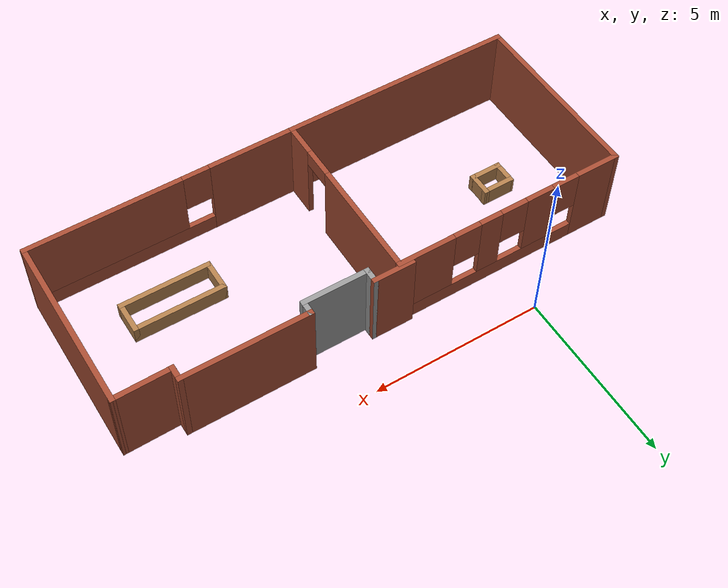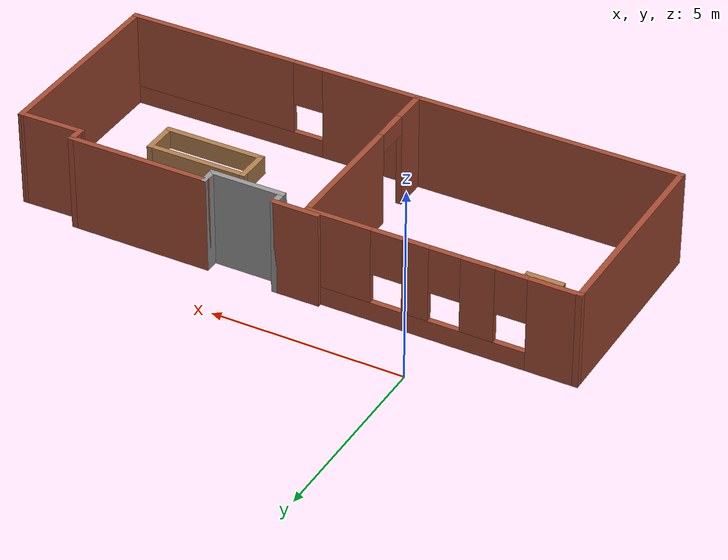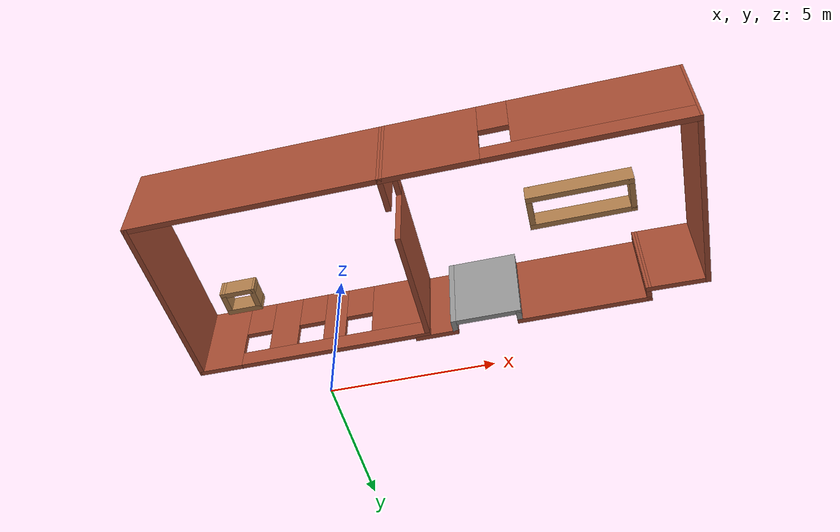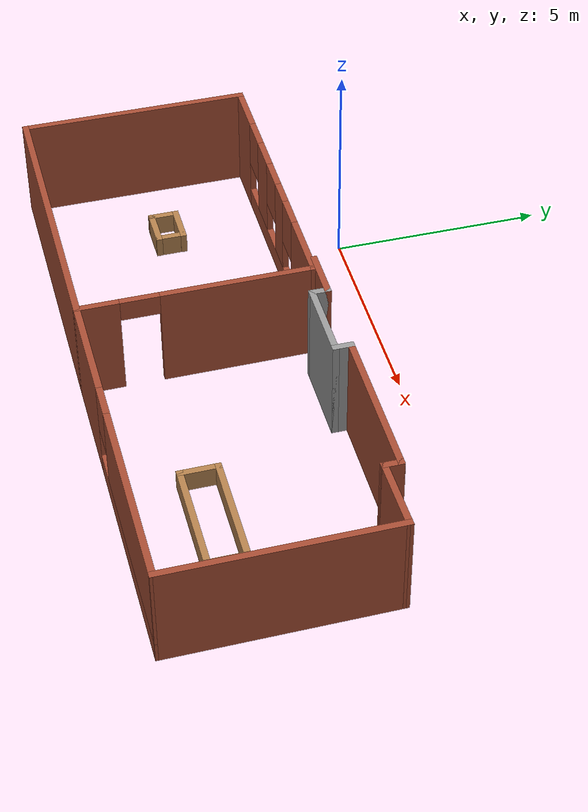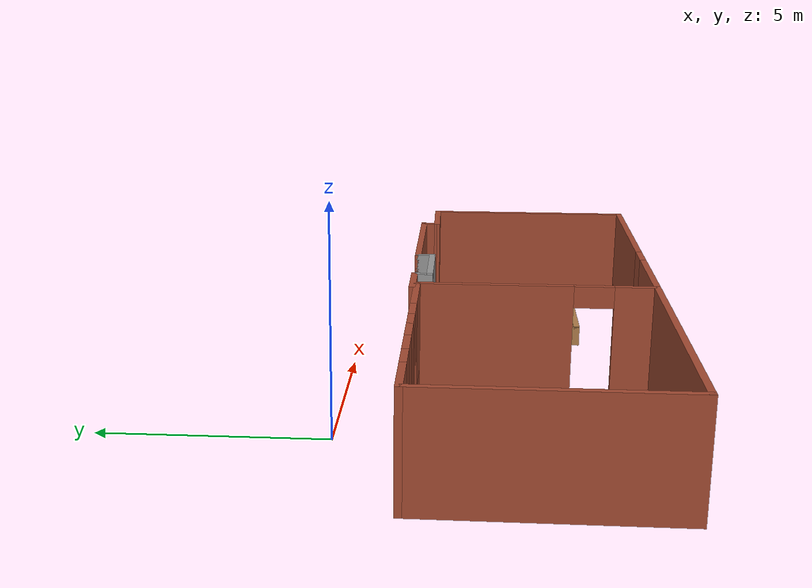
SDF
<?xml version='1.0'?>
<sdf version='1.5'>
  <model name='ktM_2nd_floor'>
    <pose>3.86055 -4.20512 0 0 -0 0</pose>
    <link name='Wall_10'>
      <pose>-0.500552 -0.049876 0 0 -0 1.5708</pose>
      <visual name='Wall_10_Visual_0'>
        <pose>-2.24128 0 1.25 0 -0 0</pose>
        <geometry>
          <box>
            <size>1.01743 0.15 2.5</size>
          </box>
        </geometry>
        <material>
          <script>
            <uri>file://media/materials/scripts/gazebo.material</uri>
            <name>Gazebo/Bricks</name>
          </script>
          <ambient>1 1 1 1</ambient>
        </material>
      </visual>
      <collision name='Wall_10_Collision_0'>
        <geometry>
          <box>
            <size>1.01743 0.15 2.5</size>
          </box>
        </geometry>
        <pose>-2.24128 0 1.25 0 -0 0</pose>
      </collision>
      <visual name='Wall_10_Visual_1'>
        <pose>0.958717 0 1.25 0 -0 0</pose>
        <geometry>
          <box>
            <size>3.58257 0.15 2.5</size>
          </box>
        </geometry>
        <material>
          <script>
            <uri>file://media/materials/scripts/gazebo.material</uri>
            <name>Gazebo/Bricks</name>
          </script>
          <ambient>1 1 1 1</ambient>
        </material>
      </visual>
      <collision name='Wall_10_Collision_1'>
        <geometry>
          <box>
            <size>3.58257 0.15 2.5</size>
          </box>
        </geometry>
        <pose>0.958717 0 1.25 0 -0 0</pose>
      </collision>
      <visual name='Wall_10_Visual_2'>
        <pose>-1.28257 0 2.25 0 -0 0</pose>
        <geometry>
          <box>
            <size>0.9 0.15 0.5</size>
          </box>
        </geometry>
        <material>
          <script>
            <uri>file://media/materials/scripts/gazebo.material</uri>
            <name>Gazebo/Bricks</name>
          </script>
          <ambient>1 1 1 1</ambient>
        </material>
      </visual>
      <collision name='Wall_10_Collision_2'>
        <geometry>
          <box>
            <size>0.9 0.15 0.5</size>
          </box>
        </geometry>
        <pose>-1.28257 0 2.25 0 -0 0</pose>
      </collision>
    </link>
    <link name='Wall_13'>
      <pose>3.42445 -2.71188 0 0 -0 0.003312</pose>
      <visual name='Wall_13_Visual_0'>
        <pose>-2.6834 0 1.25 0 -0 0</pose>
        <geometry>
          <box>
            <size>2.6332 0.15 2.5</size>
          </box>
        </geometry>
        <material>
          <script>
            <uri>file://media/materials/scripts/gazebo.material</uri>
            <name>Gazebo/Bricks</name>
          </script>
          <ambient>1 1 1 1</ambient>
        </material>
      </visual>
      <collision name='Wall_13_Collision_0'>
        <geometry>
          <box>
            <size>2.6332 0.15 2.5</size>
          </box>
        </geometry>
        <pose>-2.6834 0 1.25 0 -0 0</pose>
      </collision>
      <visual name='Wall_13_Visual_1'>
        <pose>1.3166 0 0.25 0 -0 0</pose>
        <geometry>
          <box>
            <size>5.3668 0.15 0.5</size>
          </box>
        </geometry>
        <material>
          <script>
            <uri>file://media/materials/scripts/gazebo.material</uri>
            <name>Gazebo/Bricks</name>
          </script>
          <ambient>1 1 1 1</ambient>
        </material>
      </visual>
      <collision name='Wall_13_Collision_1'>
        <geometry>
          <box>
            <size>5.3668 0.15 0.5</size>
          </box>
        </geometry>
        <pose>1.3166 0 0.25 0 -0 0</pose>
      </collision>
      <visual name='Wall_13_Visual_2'>
        <pose>1.7166 0 1.5 0 -0 0</pose>
        <geometry>
          <box>
            <size>4.5668 0.15 2</size>
          </box>
        </geometry>
        <material>
          <script>
            <uri>file://media/materials/scripts/gazebo.material</uri>
            <name>Gazebo/Bricks</name>
          </script>
          <ambient>1 1 1 1</ambient>
        </material>
      </visual>
      <collision name='Wall_13_Collision_2'>
        <geometry>
          <box>
            <size>4.5668 0.15 2</size>
          </box>
        </geometry>
        <pose>1.7166 0 1.5 0 -0 0</pose>
      </collision>
      <visual name='Wall_13_Visual_3'>
        <pose>-0.966801 0 1.9 0 -0 0</pose>
        <geometry>
          <box>
            <size>0.8 0.15 1.2</size>
          </box>
        </geometry>
        <material>
          <script>
            <uri>file://media/materials/scripts/gazebo.material</uri>
            <name>Gazebo/Bricks</name>
          </script>
          <ambient>1 1 1 1</ambient>
        </material>
      </visual>
      <collision name='Wall_13_Collision_3'>
        <geometry>
          <box>
            <size>0.8 0.15 1.2</size>
          </box>
        </geometry>
        <pose>-0.966801 0 1.9 0 -0 0</pose>
      </collision>
    </link>
    <link name='Wall_14'>
      <collision name='Wall_14_Collision'>
        <geometry>
          <box>
            <size>5.25 0.15 2.5</size>
          </box>
        </geometry>
        <pose>0 0 1.25 0 -0 0</pose>
      </collision>
      <visual name='Wall_14_Visual'>
        <pose>0 0 1.25 0 -0 0</pose>
        <geometry>
          <box>
            <size>5.25 0.15 2.5</size>
          </box>
        </geometry>
        <material>
          <script>
            <uri>file://media/materials/scripts/gazebo.material</uri>
            <name>Gazebo/Bricks</name>
          </script>
          <ambient>1 1 1 1</ambient>
        </material>
      </visual>
      <pose>7.34945 -0.148876 0 0 -0 1.5708</pose>
    </link>
    <link name='Wall_15'>
      <collision name='Wall_15_Collision'>
        <geometry>
          <box>
            <size>1.75 0.15 2.5</size>
          </box>
        </geometry>
        <pose>0 0 1.25 0 -0 0</pose>
      </collision>
      <visual name='Wall_15_Visual'>
        <pose>0 0 1.25 0 -0 0</pose>
        <geometry>
          <box>
            <size>1.75 0.15 2.5</size>
          </box>
        </geometry>
        <material>
          <script>
            <uri>file://media/materials/scripts/gazebo.material</uri>
            <name>Gazebo/Bricks</name>
          </script>
          <ambient>1 1 1 1</ambient>
        </material>
      </visual>
      <pose>6.54945 2.38812 0 0 0 -3.12534</pose>
    </link>
    <link name='Wall_16'>
      <collision name='Wall_16_Collision'>
        <geometry>
          <box>
            <size>0.5 0.15 2.5</size>
          </box>
        </geometry>
        <pose>0 0 1.25 0 -0 0</pose>
      </collision>
      <visual name='Wall_16_Visual'>
        <pose>0 0 1.25 0 -0 0</pose>
        <geometry>
          <box>
            <size>0.5 0.15 2.5</size>
          </box>
        </geometry>
        <material>
          <script>
            <uri>file://media/materials/scripts/gazebo.material</uri>
            <name>Gazebo/Bricks</name>
          </script>
          <ambient>1 1 1 1</ambient>
        </material>
      </visual>
      <pose>5.74945 2.55012 0 0 -0 1.5708</pose>
    </link>
    <link name='Wall_17'>
      <collision name='Wall_17_Collision'>
        <geometry>
          <box>
            <size>3.75 0.15 2.5</size>
          </box>
        </geometry>
        <pose>0 0 1.25 0 -0 0</pose>
      </collision>
      <visual name='Wall_17_Visual'>
        <pose>0 0 1.25 0 -0 0</pose>
        <geometry>
          <box>
            <size>3.75 0.15 2.5</size>
          </box>
        </geometry>
        <material>
          <script>
            <uri>file://media/materials/scripts/gazebo.material</uri>
            <name>Gazebo/Bricks</name>
          </script>
          <ambient>1 1 1 1</ambient>
        </material>
      </visual>
      <pose>3.94945 2.72512 0 0 -0 3.14159</pose>
    </link>
    <link name='Wall_18'>
      <collision name='Wall_18_Collision'>
        <geometry>
          <box>
            <size>0.5 0.15 2.5</size>
          </box>
        </geometry>
        <pose>0 0 1.25 0 -0 0</pose>
      </collision>
      <visual name='Wall_18_Visual'>
        <pose>0 0 1.25 0 -0 0</pose>
        <geometry>
          <box>
            <size>0.5 0.15 2.5</size>
          </box>
        </geometry>
        <material>
          <script>
            <uri>file://media/materials/scripts/gazebo.material</uri>
            <name>Gazebo/Grey</name>
          </script>
          <ambient>1 1 1 1</ambient>
        </material>
      </visual>
      <pose>2.14945 2.55012 0 0 0 -1.5708</pose>
    </link>
    <link name='Wall_19'>
      <collision name='Wall_19_Collision'>
        <geometry>
          <box>
            <size>2 0.15 2.5</size>
          </box>
        </geometry>
        <pose>0 0 1.25 0 -0 0</pose>
      </collision>
      <visual name='Wall_19_Visual'>
        <pose>0 0 1.25 0 -0 0</pose>
        <geometry>
          <box>
            <size>2 0.15 2.5</size>
          </box>
        </geometry>
        <material>
          <script>
            <uri>file://media/materials/scripts/gazebo.material</uri>
            <name>Gazebo/Grey</name>
          </script>
          <ambient>1 1 1 1</ambient>
        </material>
      </visual>
      <pose>1.22445 2.37512 0 0 -0 3.14159</pose>
    </link>
    <link name='Wall_2'>
      <pose>-3.92555 2.62512 0 0 -0 0</pose>
      <visual name='Wall_2_Visual_0'>
        <pose>-2.83498 0 1.25 0 -0 0</pose>
        <geometry>
          <box>
            <size>1.33004 0.15 2.5</size>
          </box>
        </geometry>
        <material>
          <script>
            <uri>file://media/materials/scripts/gazebo.material</uri>
            <name>Gazebo/Bricks</name>
          </script>
          <ambient>1 1 1 1</ambient>
        </material>
      </visual>
      <collision name='Wall_2_Collision_0'>
        <geometry>
          <box>
            <size>1.33004 0.15 2.5</size>
          </box>
        </geometry>
        <pose>-2.83498 0 1.25 0 -0 0</pose>
      </collision>
      <visual name='Wall_2_Visual_1'>
        <pose>0.66502 0 0.25 0 -0 0</pose>
        <geometry>
          <box>
            <size>5.66996 0.15 0.5</size>
          </box>
        </geometry>
        <material>
          <script>
            <uri>file://media/materials/scripts/gazebo.material</uri>
            <name>Gazebo/Bricks</name>
          </script>
          <ambient>1 1 1 1</ambient>
        </material>
      </visual>
      <collision name='Wall_2_Collision_1'>
        <geometry>
          <box>
            <size>5.66996 0.15 0.5</size>
          </box>
        </geometry>
        <pose>0.66502 0 0.25 0 -0 0</pose>
      </collision>
      <visual name='Wall_2_Visual_2'>
        <pose>-0.941489 0 1.5 0 -0 0</pose>
        <geometry>
          <box>
            <size>0.856941 0.15 2</size>
          </box>
        </geometry>
        <material>
          <script>
            <uri>file://media/materials/scripts/gazebo.material</uri>
            <name>Gazebo/Bricks</name>
          </script>
          <ambient>1 1 1 1</ambient>
        </material>
      </visual>
      <collision name='Wall_2_Collision_2'>
        <geometry>
          <box>
            <size>0.856941 0.15 2</size>
          </box>
        </geometry>
        <pose>-0.941489 0 1.5 0 -0 0</pose>
      </collision>
      <visual name='Wall_2_Visual_3'>
        <pose>0.6234 0 1.5 0 -0 0</pose>
        <geometry>
          <box>
            <size>0.672836 0.15 2</size>
          </box>
        </geometry>
        <material>
          <script>
            <uri>file://media/materials/scripts/gazebo.material</uri>
            <name>Gazebo/Bricks</name>
          </script>
          <ambient>1 1 1 1</ambient>
        </material>
      </visual>
      <collision name='Wall_2_Collision_3'>
        <geometry>
          <box>
            <size>0.672836 0.15 2</size>
          </box>
        </geometry>
        <pose>0.6234 0 1.5 0 -0 0</pose>
      </collision>
      <visual name='Wall_2_Visual_4'>
        <pose>2.62991 0 1.5 0 -0 0</pose>
        <geometry>
          <box>
            <size>1.74018 0.15 2</size>
          </box>
        </geometry>
        <material>
          <script>
            <uri>file://media/materials/scripts/gazebo.material</uri>
            <name>Gazebo/Bricks</name>
          </script>
          <ambient>1 1 1 1</ambient>
        </material>
      </visual>
      <collision name='Wall_2_Collision_4'>
        <geometry>
          <box>
            <size>1.74018 0.15 2</size>
          </box>
        </geometry>
        <pose>2.62991 0 1.5 0 -0 0</pose>
      </collision>
      <visual name='Wall_2_Visual_5'>
        <pose>-1.76996 0 1.9 0 -0 0</pose>
        <geometry>
          <box>
            <size>0.8 0.15 1.2</size>
          </box>
        </geometry>
        <material>
          <script>
            <uri>file://media/materials/scripts/gazebo.material</uri>
            <name>Gazebo/Bricks</name>
          </script>
          <ambient>1 1 1 1</ambient>
        </material>
      </visual>
      <collision name='Wall_2_Collision_5'>
        <geometry>
          <box>
            <size>0.8 0.15 1.2</size>
          </box>
        </geometry>
        <pose>-1.76996 0 1.9 0 -0 0</pose>
      </collision>
      <visual name='Wall_2_Visual_6'>
        <pose>-0.113019 0 1.9 0 -0 0</pose>
        <geometry>
          <box>
            <size>0.8 0.15 1.2</size>
          </box>
        </geometry>
        <material>
          <script>
            <uri>file://media/materials/scripts/gazebo.material</uri>
            <name>Gazebo/Bricks</name>
          </script>
          <ambient>1 1 1 1</ambient>
        </material>
      </visual>
      <collision name='Wall_2_Collision_6'>
        <geometry>
          <box>
            <size>0.8 0.15 1.2</size>
          </box>
        </geometry>
        <pose>-0.113019 0 1.9 0 -0 0</pose>
      </collision>
      <visual name='Wall_2_Visual_7'>
        <pose>1.35982 0 1.9 0 -0 0</pose>
        <geometry>
          <box>
            <size>0.8 0.15 1.2</size>
          </box>
        </geometry>
        <material>
          <script>
            <uri>file://media/materials/scripts/gazebo.material</uri>
            <name>Gazebo/Bricks</name>
          </script>
          <ambient>1 1 1 1</ambient>
        </material>
      </visual>
      <collision name='Wall_2_Collision_7'>
        <geometry>
          <box>
            <size>0.8 0.15 1.2</size>
          </box>
        </geometry>
        <pose>1.35982 0 1.9 0 -0 0</pose>
      </collision>
    </link>
    <link name='Wall_23'>
      <collision name='Wall_23_Collision'>
        <geometry>
          <box>
            <size>0.5 0.15 2.5</size>
          </box>
        </geometry>
        <pose>0 0 1.25 0 -0 0</pose>
      </collision>
      <visual name='Wall_23_Visual'>
        <pose>0 0 1.25 0 -0 0</pose>
        <geometry>
          <box>
            <size>0.5 0.15 2.5</size>
          </box>
        </geometry>
        <material>
          <script>
            <uri>file://media/materials/scripts/gazebo.material</uri>
            <name>Gazebo/Grey</name>
          </script>
          <ambient>1 1 1 1</ambient>
        </material>
      </visual>
      <pose>0.299448 2.55012 0 0 -0 1.5708</pose>
    </link>
    <link name='Wall_24'>
      <collision name='Wall_24_Collision'>
        <geometry>
          <box>
            <size>1.25 0.15 2.5</size>
          </box>
        </geometry>
        <pose>0 0 1.25 0 -0 0</pose>
      </collision>
      <visual name='Wall_24_Visual'>
        <pose>0 0 1.25 0 -0 0</pose>
        <geometry>
          <box>
            <size>1.25 0.15 2.5</size>
          </box>
        </geometry>
        <material>
          <script>
            <uri>file://media/materials/scripts/gazebo.material</uri>
            <name>Gazebo/Bricks</name>
          </script>
          <ambient>1 1 1 1</ambient>
        </material>
      </visual>
      <pose>-0.250552 2.72512 0 0 -0 3.14159</pose>
    </link>
    <link name='Wall_31'>
      <collision name='Wall_31_Collision'>
        <geometry>
          <box>
            <size>0.993 0.15 0.5</size>
          </box>
        </geometry>
        <pose>0 0 0.25 0 -0 0</pose>
      </collision>
      <visual name='Wall_31_Visual'>
        <pose>0 0 0.25 0 -0 0</pose>
        <geometry>
          <box>
            <size>0.993 0.15 0.5</size>
          </box>
        </geometry>
        <material>
          <script>
            <uri>file://media/materials/scripts/gazebo.material</uri>
            <name>Gazebo/Wood</name>
          </script>
          <ambient>1 1 1 1</ambient>
        </material>
      </visual>
      <pose>-5.23805 0.532355 0 0 -0 0.000548</pose>
    </link>
    <link name='Wall_32'>
      <collision name='Wall_32_Collision'>
        <geometry>
          <box>
            <size>0.75 0.15 0.5</size>
          </box>
        </geometry>
        <pose>0 0 0.25 0 -0 0</pose>
      </collision>
      <visual name='Wall_32_Visual'>
        <pose>0 0 0.25 0 -0 0</pose>
        <geometry>
          <box>
            <size>0.75 0.15 0.5</size>
          </box>
        </geometry>
        <material>
          <script>
            <uri>file://media/materials/scripts/gazebo.material</uri>
            <name>Gazebo/Wood</name>
          </script>
          <ambient>1 1 1 1</ambient>
        </material>
      </visual>
      <pose>-4.82309 0.232586 0 0 0 -1.5708</pose>
    </link>
    <link name='Wall_33'>
      <collision name='Wall_33_Collision'>
        <geometry>
          <box>
            <size>0.993 0.15 0.5</size>
          </box>
        </geometry>
        <pose>0 0 0.25 0 -0 0</pose>
      </collision>
      <visual name='Wall_33_Visual'>
        <pose>0 0 0.25 0 -0 0</pose>
        <geometry>
          <box>
            <size>0.993 0.15 0.5</size>
          </box>
        </geometry>
        <material>
          <script>
            <uri>file://media/materials/scripts/gazebo.material</uri>
            <name>Gazebo/Wood</name>
          </script>
          <ambient>1 1 1 1</ambient>
        </material>
      </visual>
      <pose>-5.23805 -0.067645 0 0 0 -3.14105</pose>
    </link>
    <link name='Wall_34'>
      <collision name='Wall_34_Collision'>
        <geometry>
          <box>
            <size>0.75 0.15 0.5</size>
          </box>
        </geometry>
        <pose>0 0 0.25 0 -0 0</pose>
      </collision>
      <visual name='Wall_34_Visual'>
        <pose>0 0 0.25 0 -0 0</pose>
        <geometry>
          <box>
            <size>0.75 0.15 0.5</size>
          </box>
        </geometry>
        <material>
          <script>
            <uri>file://media/materials/scripts/gazebo.material</uri>
            <name>Gazebo/Wood</name>
          </script>
          <ambient>1 1 1 1</ambient>
        </material>
      </visual>
      <pose>-5.65955 0.232124 0 0 -0 1.5708</pose>
    </link>
    <link name='Wall_36'>
      <collision name='Wall_36_Collision'>
        <geometry>
          <box>
            <size>2.75 0.15 0.5</size>
          </box>
        </geometry>
        <pose>0 0 0.25 0 -0 0</pose>
      </collision>
      <visual name='Wall_36_Visual'>
        <pose>0 0 0.25 0 -0 0</pose>
        <geometry>
          <box>
            <size>2.75 0.15 0.5</size>
          </box>
        </geometry>
        <material>
          <script>
            <uri>file://media/materials/scripts/gazebo.material</uri>
            <name>Gazebo/Wood</name>
          </script>
          <ambient>1 1 1 1</ambient>
        </material>
      </visual>
      <pose>4.31045 -0.437876 0 0 -0 0</pose>
    </link>
    <link name='Wall_37'>
      <collision name='Wall_37_Collision'>
        <geometry>
          <box>
            <size>1 0.15 0.5</size>
          </box>
        </geometry>
        <pose>0 0 0.25 0 -0 0</pose>
      </collision>
      <visual name='Wall_37_Visual'>
        <pose>0 0 0.25 0 -0 0</pose>
        <geometry>
          <box>
            <size>1 0.15 0.5</size>
          </box>
        </geometry>
        <material>
          <script>
            <uri>file://media/materials/scripts/gazebo.material</uri>
            <name>Gazebo/Wood</name>
          </script>
          <ambient>1 1 1 1</ambient>
        </material>
      </visual>
      <pose>5.61045 -0.862876 0 0 0 -1.5708</pose>
    </link>
    <link name='Wall_38'>
      <collision name='Wall_38_Collision'>
        <geometry>
          <box>
            <size>2.75 0.15 0.5</size>
          </box>
        </geometry>
        <pose>0 0 0.25 0 -0 0</pose>
      </collision>
      <visual name='Wall_38_Visual'>
        <pose>0 0 0.25 0 -0 0</pose>
        <geometry>
          <box>
            <size>2.75 0.15 0.5</size>
          </box>
        </geometry>
        <material>
          <script>
            <uri>file://media/materials/scripts/gazebo.material</uri>
            <name>Gazebo/Wood</name>
          </script>
          <ambient>1 1 1 1</ambient>
        </material>
      </visual>
      <pose>4.31045 -1.28788 0 0 -0 3.14159</pose>
    </link>
    <link name='Wall_40'>
      <collision name='Wall_40_Collision'>
        <geometry>
          <box>
            <size>1 0.15 0.5</size>
          </box>
        </geometry>
        <pose>0 0 0.25 0 -0 0</pose>
      </collision>
      <visual name='Wall_40_Visual'>
        <pose>0 0 0.25 0 -0 0</pose>
        <geometry>
          <box>
            <size>1 0.15 0.5</size>
          </box>
        </geometry>
        <material>
          <script>
            <uri>file://media/materials/scripts/gazebo.material</uri>
            <name>Gazebo/Wood</name>
          </script>
          <ambient>1 1 1 1</ambient>
        </material>
      </visual>
      <pose>3.01045 -0.862876 0 0 0 -1.5708</pose>
    </link>
    <link name='Wall_7'>
      <collision name='Wall_7_Collision'>
        <geometry>
          <box>
            <size>5.5 0.15 2.5</size>
          </box>
        </geometry>
        <pose>0 0 1.25 0 -0 0</pose>
      </collision>
      <visual name='Wall_7_Visual'>
        <pose>0 0 1.25 0 -0 0</pose>
        <geometry>
          <box>
            <size>5.5 0.15 2.5</size>
          </box>
        </geometry>
        <material>
          <script>
            <uri>file://media/materials/scripts/gazebo.material</uri>
            <name>Gazebo/Bricks</name>
          </script>
          <ambient>1 1 1 1</ambient>
        </material>
      </visual>
      <pose>-7.35055 -0.049876 0 0 0 -1.5708</pose>
    </link>
    <link name='Wall_9'>
      <collision name='Wall_9_Collision'>
        <geometry>
          <box>
            <size>7 0.15 2.5</size>
          </box>
        </geometry>
        <pose>0 0 1.25 0 -0 0</pose>
      </collision>
      <visual name='Wall_9_Visual'>
        <pose>0 0 1.25 0 -0 0</pose>
        <geometry>
          <box>
            <size>7 0.15 2.5</size>
          </box>
        </geometry>
        <material>
          <script>
            <uri>file://media/materials/scripts/gazebo.material</uri>
            <name>Gazebo/Bricks</name>
          </script>
          <ambient>1 1 1 1</ambient>
        </material>
      </visual>
      <pose>-3.92555 -2.72488 0 0 -0 0</pose>
    </link>
    <static>1</static>
  </model>
</sdf>
